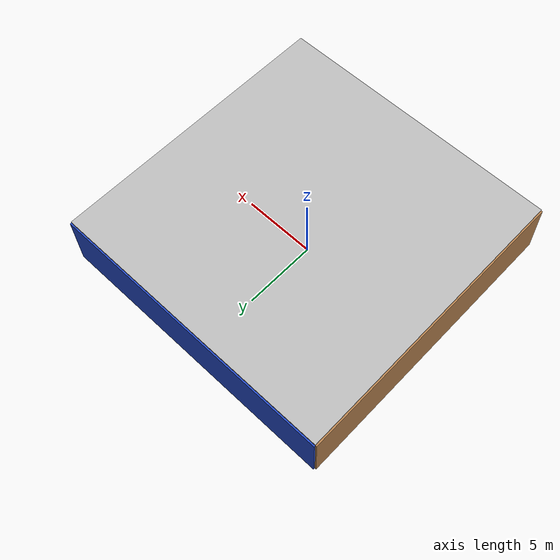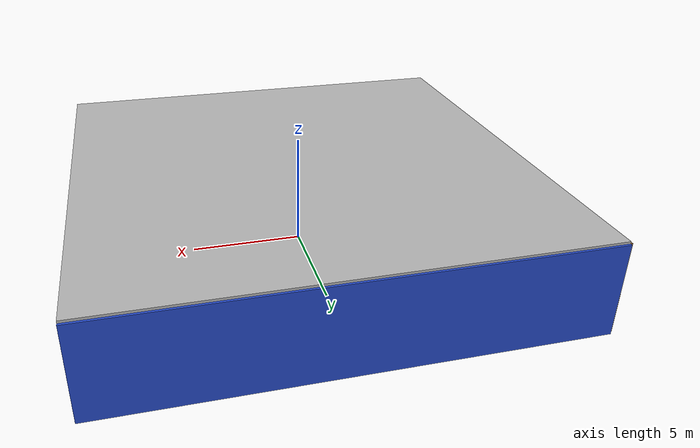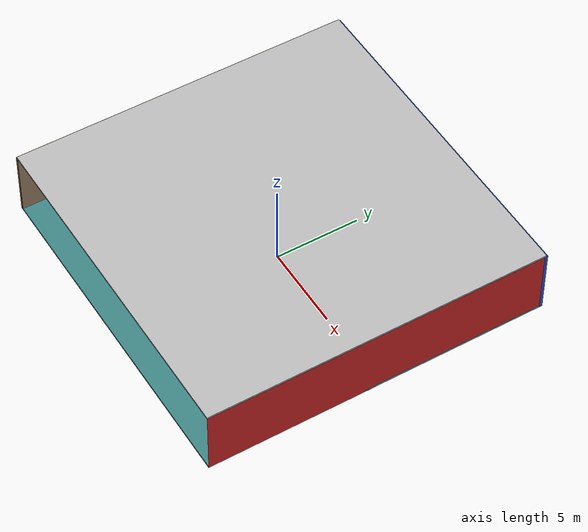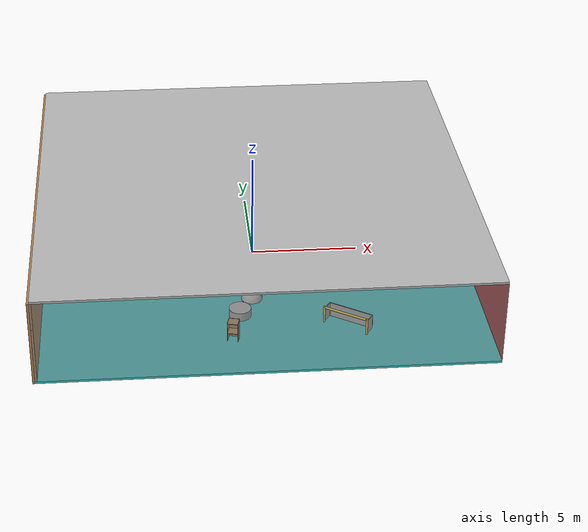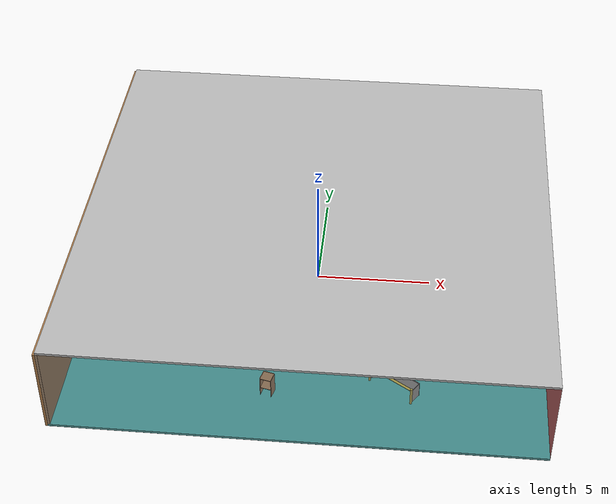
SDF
<sdf version="1.4">
 <world name="default">
  <physics type="ode">
   <max_step_size>0.001</max_step_size>
   <real_time_factor>1</real_time_factor>
   <real_time_update_rate>1000</real_time_update_rate>
   <gravity>0 0 -9.8</gravity>
  </physics>
  <scene><ambient>0.4 0.4 0.4 1</ambient><background>0.7 0.7 0.7 1</background><shadows>1</shadows></scene>
  <model name="Surrounding">
   <static>1</static>
   <link name="Ceiling">
    <collision name="Ceiling_Collision"><geometry><box><size>20 20 0.1</size></box></geometry></collision>
    <visual name="Ceiling_Visual">
     <geometry><box><size>20 20 0.1</size></box></geometry>
     <material>
      <script><uri>file://media/materials/scripts/gazebo.material</uri><name>Gazebo/LightOff</name></script>
     </material>
    </visual>
    <pose>0 0 4.05 0 0 0</pose>
   </link>
   <link name="Wall_South">
    <collision name="Wall_South_Collision">
     <geometry><box><size>20 0 4</size></box></geometry>
     <pose>0 0 2 0 -0 0</pose>
    </collision>
    <visual name="Wall_South_Visual">
     <pose>0 0 2 0 -0 0</pose>
     <geometry><box><size>20 0 4</size></box></geometry>
     <material>
      <script><uri>file://media/materials/scripts/gazebo.material</uri><name>Gazebo/GreyTransparent</name></script>
     </material>
    </visual>
    <velocity_decay><linear>0</linear><angular>0</angular></velocity_decay>
    <pose>0 -10 0 0 -0 0</pose>
   </link>
   <link name="Wall_East">
    <collision name="Wall_21_Collision">
     <geometry><box><size>20 0 4</size></box></geometry>
     <pose>0 0 2 0 -0 0</pose>
    </collision>
    <visual name="Wall_21_Visual">
     <pose>0 0 2 0 -0 0</pose>
     <geometry><box><size>20 0 4</size></box></geometry>
     <material>
      <script><uri>file://media/materials/scripts/gazebo.material</uri><name>Gazebo/Red</name></script>
     </material>
    </visual>
    <velocity_decay><linear>0</linear><angular>0</angular></velocity_decay>
    <pose>10 0 0 0 -0 1.5708</pose>
   </link>
   <link name="Wall_North">
    <collision name="Wall_22_Collision">
     <geometry><box><size>20 0.2 4</size></box></geometry>
     <pose>0 0 2 0 -0 0</pose>
    </collision>
    <visual name="Wall_22_Visual">
     <pose>0 0 2 0 -0 0</pose>
     <geometry><box><size>20 0.2 4</size></box></geometry>
     <material>
      <script><uri>file://media/materials/scripts/gazebo.material</uri><name>Gazebo/BlueLaser</name></script>
     </material>
    </visual>
    <velocity_decay><linear>0</linear><angular>0</angular></velocity_decay>
    <pose>0 10 0 0 -0 0</pose>
   </link>
   <link name="Wall_West">
    <collision name="Wall_23_Collision">
     <geometry><box><size>20 0.2 4</size></box></geometry>
     <pose>0 0 2 0 -0 0</pose>
    </collision>
    <visual name="Wall_23_Visual">
     <pose>0 0 2 0 -0 0</pose>
     <geometry><box><size>20 0.2 4</size></box></geometry>
     <material>
      <script><uri>file://media/materials/scripts/gazebo.material</uri><name>Gazebo/WoodPallet</name></script>
     </material>
    </visual>
    <velocity_decay><linear>0</linear><angular>0</angular></velocity_decay>
    <pose>-10 0 0 0 0 -1.5708</pose>
   </link>
   <link name="Ground_link">
    <collision name="collision">
     <pose>0 0 .05 0 -0 0</pose>
     <geometry><box><size>20 20 0.1</size></box></geometry>
    </collision>
    <visual name="visual">
     <pose>0 0 .05 0 -0 0</pose>
     <geometry><box><size>20 20 0.1</size></box></geometry>
     <material>
      <script>
       <uri>file://media/materials/scripts/gazebo.material</uri>
       <name>Gazebo/TurquoiseGlowOutline</name>
      </script>
     </material>
    </visual>
   </link>
   <static>1</static>
  </model>
  <spherical_coordinates>
   <surface_model>EARTH_WGS84</surface_model>
   <latitude_deg>0</latitude_deg>
   <longitude_deg>0</longitude_deg>
   <elevation>0</elevation>
   <heading_deg>0</heading_deg>
  </spherical_coordinates>
  <light name="lightball_0" type="diffuse">
   <diffuse>0.8 0.8 0.8 1</diffuse>
   <specular>0.2 0.2 0.2 1</specular>
   <attenuation>
    <range>100</range>
    <constant>0.7</constant>
    <linear>0.01</linear>
    <quadratic>0.001</quadratic>
   </attenuation>
   <direction>-0.5 0.1 -0.9</direction>
   <pose>-8.30467542162 -5.84453620581 2.6798216756 0 0 0</pose>
  </light>
  <light name="lightball_1" type="diffuse">
   <diffuse>0.8 0.8 0.8 1</diffuse>
   <specular>0.2 0.2 0.2 1</specular>
   <attenuation>
    <range>100</range>
    <constant>0.7</constant>
    <linear>0.01</linear>
    <quadratic>0.001</quadratic>
   </attenuation>
   <direction>-0.5 0.1 -0.9</direction>
   <pose>-9.24973350362 -2.44762248952 2.51080461666 0 0 0</pose>
  </light>
  <light name="lightball_2" type="diffuse">
   <diffuse>0.8 0.8 0.8 1</diffuse>
   <specular>0.2 0.2 0.2 1</specular>
   <attenuation>
    <range>100</range>
    <constant>0.7</constant>
    <linear>0.01</linear>
    <quadratic>0.001</quadratic>
   </attenuation>
   <direction>-0.5 0.1 -0.9</direction>
   <pose>-8.37603916407 -7.17191586133 3.39663094785 0 0 0</pose>
  </light>
  <light name="lightball_3" type="diffuse">
   <diffuse>0.8 0.8 0.8 1</diffuse>
   <specular>0.2 0.2 0.2 1</specular>
   <attenuation>
    <range>100</range>
    <constant>0.7</constant>
    <linear>0.01</linear>
    <quadratic>0.001</quadratic>
   </attenuation>
   <direction>-0.5 0.1 -0.9</direction>
   <pose>-6.74651527811 -5.07827667797 3.89661562076 0 0 0</pose>
  </light>
  <light name="lightball_4" type="diffuse">
   <diffuse>0.8 0.8 0.8 1</diffuse>
   <specular>0.2 0.2 0.2 1</specular>
   <attenuation>
    <range>100</range>
    <constant>0.7</constant>
    <linear>0.01</linear>
    <quadratic>0.001</quadratic>
   </attenuation>
   <direction>-0.5 0.1 -0.9</direction>
   <pose>7.85110709418 4.34118488879 0.591716700089 0 0 0</pose>
  </light>
  <light name="lightball_5" type="diffuse">
   <diffuse>0.8 0.8 0.8 1</diffuse>
   <specular>0.2 0.2 0.2 1</specular>
   <attenuation>
    <range>100</range>
    <constant>0.7</constant>
    <linear>0.01</linear>
    <quadratic>0.001</quadratic>
   </attenuation>
   <direction>-0.5 0.1 -0.9</direction>
   <pose>7.8576638031 -0.126091496009 3.06454053123 0 0 0</pose>
  </light>
  <include><uri>model://table</uri><pose>-4.93570458477 2.40052883305 0 0 0 2.34913720253</pose></include>
  <include><uri>model://cabinet</uri><pose>-1.42533046825 -7.4456047272 0 0 0 1.32569449993</pose></include>
  <include>
   <uri>model://textured_shapes</uri>
   <pose>-0.36709248441 -4.23053973662 0 0 0 2.70292540337</pose>
  </include>
  <include><uri>model://cabinet</uri><pose>2.55345301664 -2.46619049828 0 0 0 2.77061115454</pose></include>
  <include>
   <uri>model://robocup_3Dsim_goal</uri>
   <pose>3.58505708238 -6.9528182709 0 0 0 0.981911190769</pose>
  </include>
  <include>
   <uri>model://robocup_3Dsim_goal</uri>
   <pose>7.62612673762 -1.05889347094 0 0 0 2.50203388479</pose>
  </include>
  <include><uri>model://cabinet</uri><pose>8.39111642947 5.08115255919 0 0 0 2.52781908529</pose></include>
 </world>
</sdf>

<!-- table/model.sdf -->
<sdf version="1.5">
  <model name="table">
    <static>true</static>
    <link name="link">
      <collision name="surface">
        <pose>0 0 1.0 0 0 0</pose>
        <geometry>
          <box>
            <size>1.5 0.8 0.03</size>
          </box>
        </geometry>
        <surface>
          <friction>
            <ode>
              <mu>0.6</mu>
              <mu2>0.6</mu2>
            </ode>
          </friction>
        </surface>
      </collision>
      <visual name="visual1">
        <pose>0 0 1.0 0 0 0</pose>
        <geometry>
          <box>
            <size>1.5 0.8 0.03</size>
          </box>
        </geometry>
        <material>
          <script>
            <uri>model://media/materials/scripts/gazebo.material</uri>
            <name>Gazebo/Wood</name>
          </script>
        </material>
      </visual>
      <collision name="front_left_leg">
        <pose>0.68 0.38 0.5 0 0 0</pose>
        <geometry>
          <cylinder>
            <radius>0.02</radius>
            <length>1.0</length>
          </cylinder>
        </geometry>
      </collision>
      <visual name="front_left_leg">
        <pose>0.68 0.38 0.5 0 0 0</pose>
        <geometry>
          <cylinder>
            <radius>0.02</radius>
            <length>1.0</length>
          </cylinder>
        </geometry>
        <material>
          <script>
            <uri>model://media/materials/scripts/gazebo.material</uri>
            <name>Gazebo/Grey</name>
          </script>
        </material>
      </visual>
      <collision name="front_right_leg">
        <pose>0.68 -0.38 0.5 0 0 0</pose>
        <geometry>
          <cylinder>
            <radius>0.02</radius>
            <length>1.0</length>
          </cylinder>
        </geometry>
      </collision>
      <visual name="front_right_leg">
        <pose>0.68 -0.38 0.5 0 0 0</pose>
        <geometry>
          <cylinder>
            <radius>0.02</radius>
            <length>1.0</length>
          </cylinder>
        </geometry>
        <material>
          <script>
            <uri>model://media/materials/scripts/gazebo.material</uri>
            <name>Gazebo/Grey</name>
          </script>
        </material>
      </visual>
      <collision name="back_right_leg">
        <pose>-0.68 -0.38 0.5 0 0 0</pose>
        <geometry>
          <cylinder>
            <radius>0.02</radius>
            <length>1.0</length>
          </cylinder>
        </geometry>
      </collision>
      <visual name="back_right_leg">
        <pose>-0.68 -0.38 0.5 0 0 0</pose>
        <geometry>
          <cylinder>
            <radius>0.02</radius>
            <length>1.0</length>
          </cylinder>
        </geometry>
        <material>
          <script>
            <uri>model://media/materials/scripts/gazebo.material</uri>
            <name>Gazebo/Grey</name>
          </script>
        </material>
      </visual>
      <collision name="back_left_leg">
        <pose>-0.68 0.38 0.5 0 0 0</pose>
        <geometry>
          <cylinder>
            <radius>0.02</radius>
            <length>1.0</length>
          </cylinder>
        </geometry>
      </collision>
      <visual name="back_left_leg">
        <pose>-0.68 0.38 0.5 0 0 0</pose>
        <geometry>
          <cylinder>
            <radius>0.02</radius>
            <length>1.0</length>
          </cylinder>
        </geometry>
        <material>
          <script>
            <uri>model://media/materials/scripts/gazebo.material</uri>
            <name>Gazebo/Grey</name>
          </script>
        </material>
      </visual>
    </link>
  </model>
</sdf>

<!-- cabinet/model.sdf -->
<sdf version="1.5">
  <model name="cabinet">
    <static>true</static>
    <link name="cabinet_bottom_plate">
      <inertial>
        <pose>0 0 -1 0 0 0</pose>
        <inertia>
          <ixx>2.050000</ixx>
          <ixy>0</ixy>
          <ixz>0</ixz>
          <iyy>2.050000</iyy>
          <iyz>0</iyz>
          <izz>2.050000</izz>
        </inertia>
        <mass>25.000000</mass>
      </inertial>
      <collision name="cabinet_bottom_plate_geom">
        <pose>0 0 0.010000 0 0 0</pose>
        <geometry>
          <box>
            <size>0.450000 0.450000 0.020000</size>
          </box>
        </geometry>
      </collision>
      <visual name="cabinet_bottom_plate_geom_visual">
        <pose>0 0 0.010000 0 0 0</pose>
        <geometry>
          <box>
            <size>0.450000 0.450000 0.020000</size>
          </box>
        </geometry>
        <material>
          <script>
            <uri>model://media/materials/scripts/gazebo.material</uri>
            <name>Gazebo/Wood</name>
          </script>
        </material>
      </visual>
      <collision name="cabinet_bottom_plate_geom_cabinet_back_plate">
        <pose>0.235000 0 0.510000 0 0 0</pose>
        <geometry>
          <box>
            <size>0.020000 0.450000 1.020000</size>
          </box>
        </geometry>
      </collision>
      <visual name="cabinet_bottom_plate_geom_cabinet_back_plate_visual">
        <pose>0.235000 0 0.510000 0 0 0</pose>
        <geometry>
          <box>
            <size>0.020000 0.450000 1.020000</size>
          </box>
        </geometry>
        <material>
          <script>
            <uri>model://media/materials/scripts/gazebo.material</uri>
            <name>Gazebo/Wood</name>
          </script>
        </material>
      </visual>
      <collision name="cabinet_bottom_plate_geom_cabinet_left_plate">
        <pose>0 0.235000 0.510000 0 0 0</pose>
        <geometry>
          <box>
            <size>0.450000 0.020000 1.020000</size>
          </box>
        </geometry>
      </collision>
      <visual name="cabinet_bottom_plate_geom_cabinet_left_plate_visual">
        <pose>0 0.235000 0.510000 0 0 0</pose>
        <geometry>
          <box>
            <size>0.450000 0.020000 1.020000</size>
          </box>
        </geometry>
        <material>
          <script>
            <uri>model://media/materials/scripts/gazebo.material</uri>
            <name>Gazebo/Wood</name>
          </script>
        </material>
      </visual>
      <collision name="cabinet_bottom_plate_geom_cabinet_middle_plate">
        <pose>0 0 0.510000 0 0 0</pose>
        <geometry>
          <box>
            <size>0.450000 0.450000 0.020000</size>
          </box>
        </geometry>
      </collision>
      <visual name="cabinet_bottom_plate_geom_cabinet_middle_plate_visual">
        <pose>0 0 0.510000 0 0 0</pose>
        <geometry>
          <box>
            <size>0.450000 0.450000 0.020000</size>
          </box>
        </geometry>
        <material>
          <script>
            <uri>model://media/materials/scripts/gazebo.material</uri>
            <name>Gazebo/Wood</name>
          </script>
        </material>
      </visual>
      <collision name="cabinet_bottom_plate_geom_cabinet_right_plate">
        <pose>0 -0.235000 0.510000 0 0 0</pose>
        <geometry>
          <box>
            <size>0.450000 0.020000 1.020000</size>
          </box>
        </geometry>
      </collision>
      <visual name="cabinet_bottom_plate_geom_cabinet_right_plate_visual">
        <pose>0 -0.235000 0.510000 0 0 0</pose>
        <geometry>
          <box>
            <size>0.450000 0.020000 1.020000</size>
          </box>
        </geometry>
        <material>
          <script>
            <uri>model://media/materials/scripts/gazebo.material</uri>
            <name>Gazebo/Wood</name>
          </script>
        </material>
      </visual>
      <collision name="cabinet_bottom_plate_geom_cabinet_top_plate">
        <pose>0 0 1.010000 0 0 0</pose>
        <geometry>
          <box>
            <size>0.450000 0.450000 0.020000</size>
          </box>
        </geometry>
      </collision>
      <visual name="cabinet_bottom_plate_geom_cabinet_top_plate_visual">
        <pose>0 0 1.010000 0 0 0</pose>
        <geometry>
          <box>
            <size>0.450000 0.450000 0.020000</size>
          </box>
        </geometry>
        <material>
          <script>
            <uri>model://media/materials/scripts/gazebo.material</uri>
            <name>Gazebo/Wood</name>
          </script>
        </material>
      </visual>
    </link>
  </model>
</sdf>

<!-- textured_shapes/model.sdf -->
<sdf version="1.6">
  <model name="textured_shapes">
    <pose>0 0 0.5 0 0 0</pose>
    <link name="box">
      <pose>0 -1.5 0 0 0 0</pose>
      <collision name="collision">
        <geometry>
          <box>
            <size>1 1 1</size>
          </box>
        </geometry>
      </collision>
      <visual name="visual">
        <geometry>
          <box>
            <size>1 1 1</size>
          </box>
        </geometry>
        <material>
          <script>
            <uri>model://../model_source/models/textured_shapes/materials/scripts</uri>
            <uri>model://../model_source/models/textured_shapes/materials/textures</uri>
            <name>TexturedShape/Squares</name>
          </script>
        </material>
      </visual>
    </link>
    <link name="sphere">
      <collision name="collision">
        <geometry>
          <sphere>
            <radius>0.5</radius>
          </sphere>
        </geometry>
      </collision>
      <visual name="visual">
        <geometry>
          <sphere>
            <radius>0.5</radius>
          </sphere>
        </geometry>
        <material>
          <script>
            <uri>model://../model_source/models/textured_shapes/materials/scripts</uri>
            <uri>model://../model_source/models/textured_shapes/materials/textures</uri>
            <name>TexturedShape/Squares</name>
          </script>
        </material>
      </visual>
    </link>
    <link name="cylinder">
      <pose>0 1.5 0 0 0 0</pose>
      <collision name="collision">
        <geometry>
          <cylinder>
            <radius>0.5</radius>
            <length>1</length>
          </cylinder>
        </geometry>
      </collision>
      <visual name="visual">
        <geometry>
          <cylinder>
            <radius>0.5</radius>
            <length>1</length>
          </cylinder>
        </geometry>
        <material>
          <script>
            <uri>model://../model_source/models/textured_shapes/materials/scripts</uri>
            <uri>model://../model_source/models/textured_shapes/materials/textures</uri>
            <name>TexturedShape/Squares</name>
          </script>
        </material>
      </visual>
    </link>
  </model>
</sdf>

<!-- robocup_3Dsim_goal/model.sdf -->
<sdf version="1.5">
  <model name="robocup_3d_goal">
    <static>true</static>
    <link name="left_post">
      <pose>0 1.05 0.45 0 0 0</pose>
      <collision name="collision">
        <geometry>
          <cylinder>
            <radius>0.05</radius>
            <length>0.9</length>
          </cylinder>
        </geometry>
      </collision>
      <visual name="visual">
        <geometry>
          <cylinder>
            <radius>0.05</radius>
            <length>0.9</length>
          </cylinder>
        </geometry>
        <material>
          <script>
            <uri>file://media/materials/scripts/gazebo.material</uri>
            <name>Gazebo/ZincYellow</name>
          </script>
        </material>
      </visual>
    </link>
    <link name="left_support_horiz_lower">
      <pose>0.30 1.05 0.01 0 0 0</pose>
      <collision name="collision">
        <geometry>
          <box>
            <size>0.50 0.02 0.02</size>
          </box>
        </geometry>
      </collision>
      <visual name="visual">
        <geometry>
          <box>
            <size>0.50 0.02 0.02</size>
          </box>
        </geometry>
        <material>
          <script>
            <uri>file://media/materials/scripts/gazebo.material</uri>
            <name>Gazebo/White</name>
          </script>
        </material>
      </visual>
    </link>
    <link name="left_support_horiz_upper">
      <pose>0.30 1.05 0.79 0 0 0</pose>
      <collision name="collision">
        <geometry>
          <box>
            <size>0.50 0.02 0.02</size>
          </box>
        </geometry>
      </collision>
      <visual name="visual">
        <geometry>
          <box>
            <size>0.50 0.02 0.02</size>
          </box>
        </geometry>
        <material>
          <script>
            <uri>file://media/materials/scripts/gazebo.material</uri>
            <name>Gazebo/White</name>
          </script>
        </material>
      </visual>
    </link>
    <link name="left_support_vertical">
      <pose>0.56 1.05 0.4 0 1.5708 0</pose>
      <collision name="collision">
        <geometry>
          <box>
            <size>0.80 0.02 0.02</size>
          </box>
        </geometry>
      </collision>
      <visual name="visual">
        <geometry>
          <box>
            <size>0.80 0.02 0.02</size>
          </box>
        </geometry>
        <material>
          <script>
            <uri>file://media/materials/scripts/gazebo.material</uri>
            <name>Gazebo/White</name>
          </script>
        </material>
      </visual>
    </link>
    <link name="right_support_horiz_lower">
      <pose>0.30 -1.05 0.01 0 0 0</pose>
      <collision name="collision">
        <geometry>
          <box>
            <size>0.50 0.02 0.02</size>
          </box>
        </geometry>
      </collision>
      <visual name="visual">
        <geometry>
          <box>
            <size>0.50 0.02 0.02</size>
          </box>
        </geometry>
        <material>
          <script>
            <uri>file://media/materials/scripts/gazebo.material</uri>
            <name>Gazebo/White</name>
          </script>
        </material>
      </visual>
    </link>
    <link name="right_support_horiz_upper">
      <pose>0.30 -1.05 0.79 0 0 0</pose>
      <collision name="collision">
        <geometry>
          <box>
            <size>0.50 0.02 0.02</size>
          </box>
        </geometry>
      </collision>
      <visual name="visual">
        <geometry>
          <box>
            <size>0.50 0.02 0.02</size>
          </box>
        </geometry>
        <material>
          <script>
            <uri>file://media/materials/scripts/gazebo.material</uri>
            <name>Gazebo/White</name>
          </script>
        </material>
      </visual>
    </link>
    <link name="right_support_vertical">
      <pose>0.56 -1.05 0.4 0 1.5708 0</pose>
      <collision name="collision">
        <geometry>
          <box>
            <size>0.80 0.02 0.02</size>
          </box>
        </geometry>
      </collision>
      <visual name="visual">
        <geometry>
          <box>
            <size>0.80 0.02 0.02</size>
          </box>
        </geometry>
        <material>
          <script>
            <uri>file://media/materials/scripts/gazebo.material</uri>
            <name>Gazebo/White</name>
          </script>
        </material>
      </visual>
    </link>
    <link name="center_support_horiz_lower">
      <pose>0.56 0 0.01 0 1.5708 0</pose>
      <collision name="collision">
        <geometry>
          <box>
            <size>0.02 2.08 0.02</size>
          </box>
        </geometry>
      </collision>
      <visual name="visual">
        <geometry>
          <box>
            <size>0.02 2.08 0.02</size>
          </box>
        </geometry>
        <material>
          <script>
            <uri>file://media/materials/scripts/gazebo.material</uri>
            <name>Gazebo/White</name>
          </script>
        </material>
      </visual>
    </link>
    <link name="center_support_horiz_upper">
      <pose>0.56 0 0.79 0 1.5708 0</pose>
      <collision name="collision">
        <geometry>
          <box>
            <size>0.02 2.08 0.02</size>
          </box>
        </geometry>
      </collision>
      <visual name="visual">
        <geometry>
          <box>
            <size>0.02 2.08 0.02</size>
          </box>
        </geometry>
        <material>
          <script>
            <uri>file://media/materials/scripts/gazebo.material</uri>
            <name>Gazebo/White</name>
          </script>
        </material>
      </visual>
    </link>
    <link name="right_post">
      <pose>0 -1.05 0.45 0 0 0</pose>
      <collision name="collision">
        <geometry>
          <cylinder>
            <radius>0.05</radius>
            <length>0.9</length>
          </cylinder>
        </geometry>
      </collision>
      <visual name="visual">
        <geometry>
          <cylinder>
            <radius>0.05</radius>
            <length>0.9</length>
          </cylinder>
        </geometry>
        <material>
          <script>
            <uri>file://media/materials/scripts/gazebo.material</uri>
            <name>Gazebo/ZincYellow</name>
          </script>
        </material>
      </visual>
    </link>
    <link name="crossbar">
      <pose>0 0 0.85 1.57 1.57 0</pose>
      <collision name="collision">
        <geometry>
          <cylinder>
            <radius>0.05</radius>
            <length>2.0</length>
          </cylinder>
        </geometry>
      </collision>
      <visual name="visual">
        <geometry>
          <cylinder>
            <radius>0.05</radius>
            <length>2.0</length>
          </cylinder>
        </geometry>
        <material>
          <script>
            <uri>file://media/materials/scripts/gazebo.material</uri>
            <name>Gazebo/ZincYellow</name>
          </script>
        </material>
      </visual>
    </link>
    <link name="center_net">
      <pose>0.56 0 0.40 0 0 0</pose>
      <collision name="collision">
        <geometry>
          <box>
            <size>0.01 2.1 0.80</size>
          </box>
        </geometry>
      </collision>
      <visual name="visual">
        <geometry>
          <box>
            <size>0.01 2.1 0.80</size>
          </box>
        </geometry>
        <material>
          <script>
            <uri>model://../model_source/models/robocup09_spl_field/materials/scripts/</uri>
            <uri>model://../model_source/models/robocup09_spl_field/materials/textures/</uri>
            <name>RoboCup/Net</name>
          </script>
        </material>
      </visual>
    </link>
    <link name="left_net">
      <pose>0.30 1.05 0.40 0 0 0</pose>
      <collision name="collision">
        <geometry>
          <box>
            <size>0.50 0.01 0.76</size>
          </box>
        </geometry>
      </collision>
      <visual name="visual">
        <geometry>
          <box>
            <size>0.50 0.01 0.76</size>
          </box>
        </geometry>
        <material>
          <script>
            <uri>model://../model_source/models/robocup09_spl_field/materials/scripts/</uri>
            <uri>model://../model_source/models/robocup09_spl_field/materials/textures/</uri>
            <name>RoboCup/Net</name>
          </script>
        </material>
      </visual>
    </link>
    <link name="right_net">
      <pose>0.30 -1.05 0.40 0 0 0</pose>
      <collision name="collision">
        <geometry>
          <box>
            <size>0.50 0.01 0.76</size>
          </box>
        </geometry>
      </collision>
      <visual name="visual">
        <geometry>
          <box>
            <size>0.50 0.01 0.76</size>
          </box>
        </geometry>
        <material>
          <script>
            <uri>model://../model_source/models/robocup09_spl_field/materials/scripts/</uri>
            <uri>model://../model_source/models/robocup09_spl_field/materials/textures/</uri>
            <name>RoboCup/Net</name>
          </script>
        </material>
      </visual>
    </link>
  </model>
</sdf>
